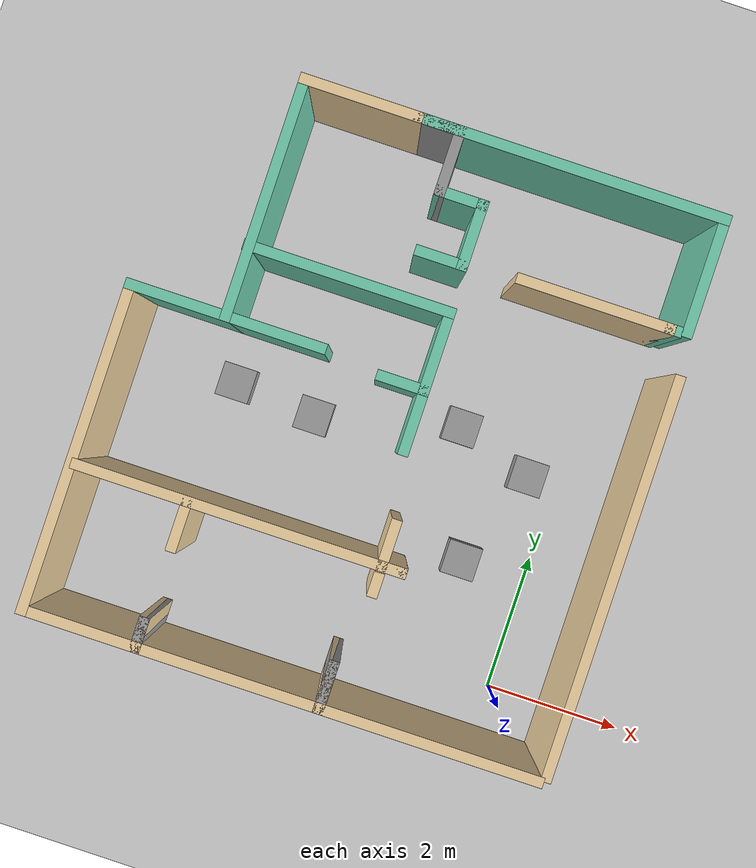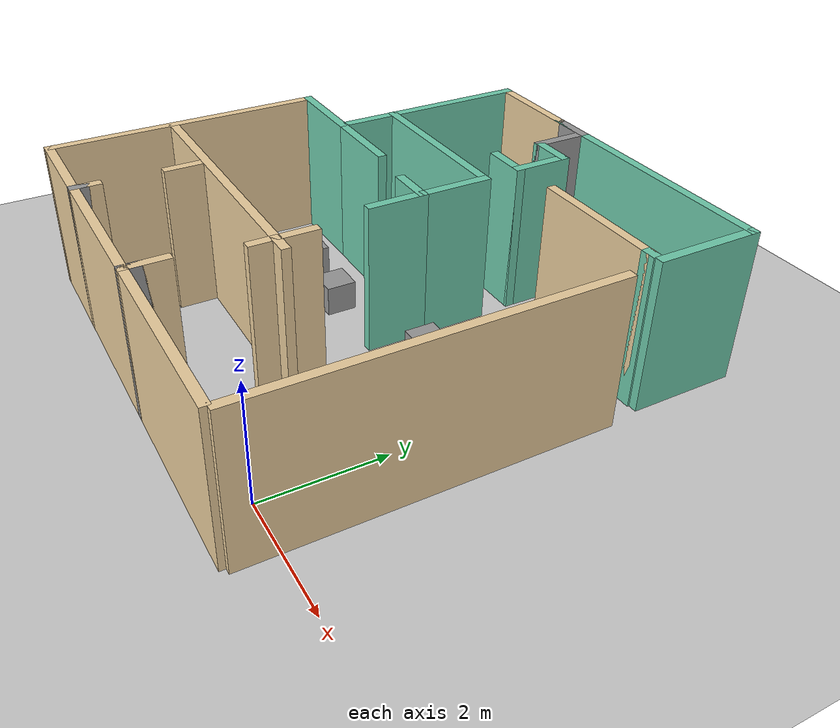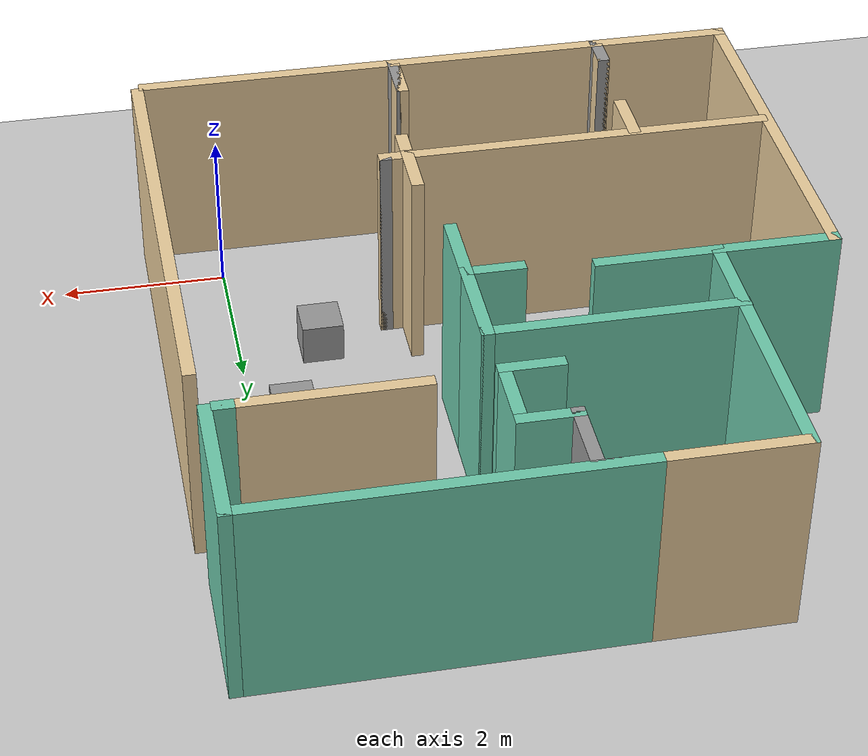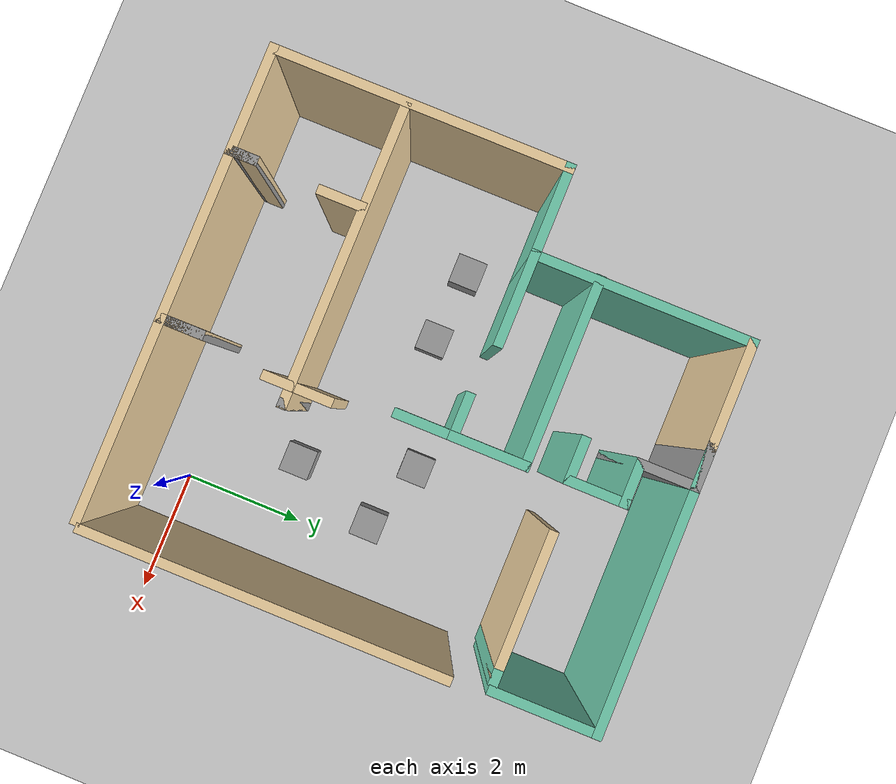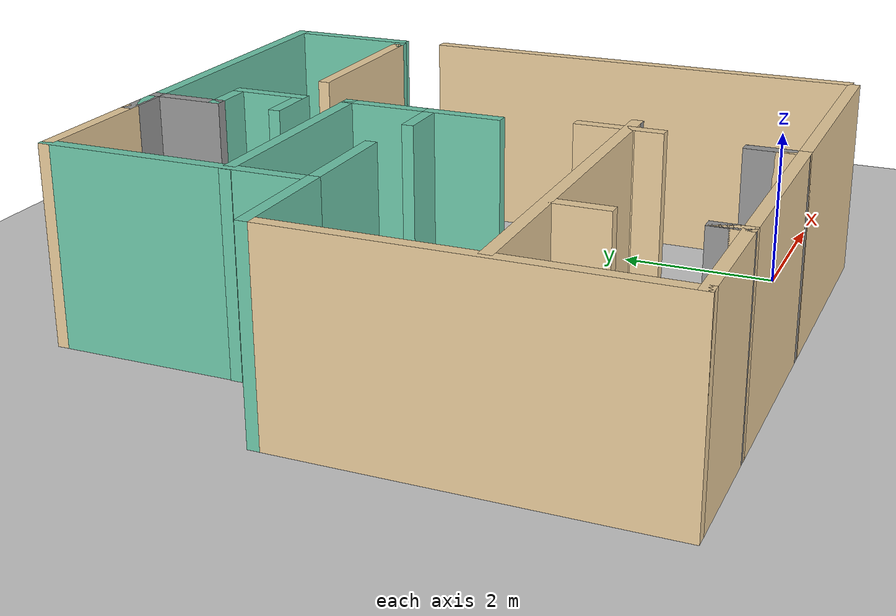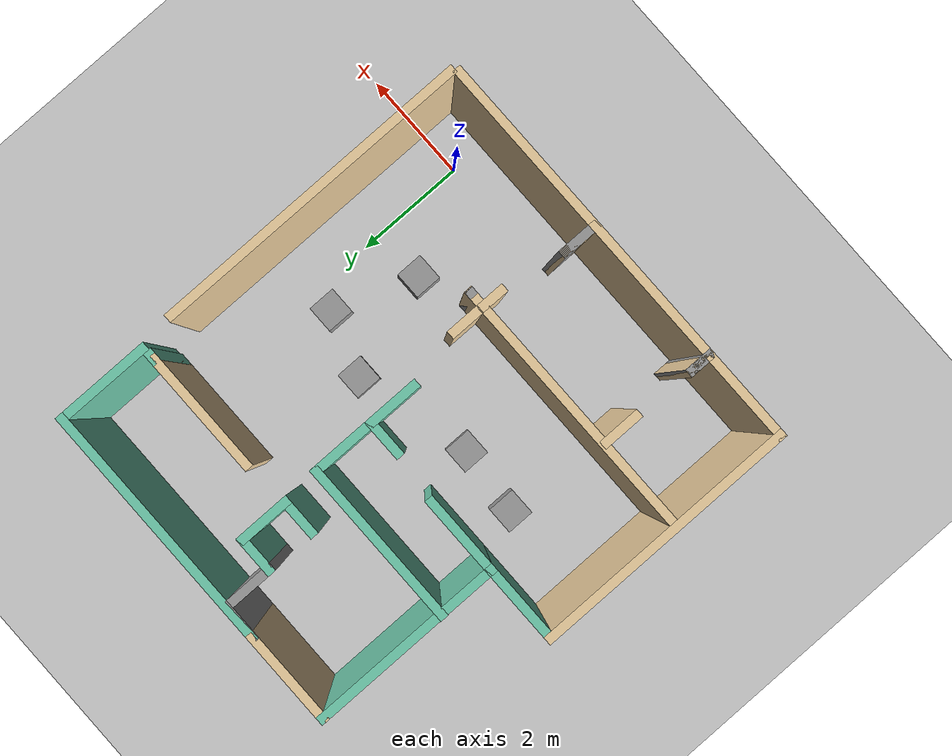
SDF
<sdf version="1.6">
 <world name="default">
  <light name="sun" type="directional">
   <pose>0 0 10 0 -0 0</pose>
   <diffuse>0.8 0.8 0.8 1</diffuse>
   <specular>0.1 0.1 0.1 1</specular>
   <attenuation>
    <range>1000</range>
    <constant>0.9</constant>
    <linear>0.01</linear>
    <quadratic>0.001</quadratic>
   </attenuation>
   <direction>-0.5 0.5 -1</direction>
  </light>
  <model name="ground_plane">
   <static>1</static>
   <link name="link">
    <collision name="collision">
     <geometry><plane><normal>0 0 1</normal><size>100 100</size></plane></geometry>
     <surface><friction><ode><mu>100</mu><mu2>50</mu2></ode></friction></surface>
    </collision>
    <visual name="visual">
     <cast_shadows>0</cast_shadows>
     <geometry><plane><normal>0 0 1</normal><size>100 100</size></plane></geometry>
     <material>
      <script><uri>file://media/materials/scripts/gazebo.material</uri><name>Gazebo/Grey</name></script>
     </material>
    </visual>
   </link>
  </model>
  <gravity>0 0 -9.8</gravity>
  <magnetic_field>6e-06 2.3e-05 -4.2e-05</magnetic_field>
  <atmosphere type="adiabatic"/>
  <physics name="default_physics" default="0" type="ode">
   <max_step_size>0.001</max_step_size>
   <real_time_factor>1</real_time_factor>
   <real_time_update_rate>1000</real_time_update_rate>
  </physics>
  <scene><ambient>0.4 0.4 0.4 1</ambient><background>0.7 0.7 0.7 1</background><shadows>1</shadows></scene>
  <spherical_coordinates>
   <surface_model>EARTH_WGS84</surface_model>
   <latitude_deg>0</latitude_deg>
   <longitude_deg>0</longitude_deg>
   <elevation>0</elevation>
   <heading_deg>0</heading_deg>
  </spherical_coordinates>
  <model name="floor_0">
   <pose>-2.83404 3.27587 0 0 -0 0</pose>
   <link name="Wall_0">
    <collision name="Wall_0_Collision">
     <geometry><box><size>1.75 0.15 2.5</size></box></geometry>
     <pose>0 0 1.25 0 -0 0</pose>
    </collision>
    <visual name="Wall_0_Visual">
     <pose>0 0 1.25 0 -0 0</pose>
     <geometry><box><size>1.75 0.15 2.5</size></box></geometry>
     <material>
      <script><uri>file://media/materials/scripts/gazebo.material</uri><name>Gazebo/Grey</name></script>
      <ambient>0.921569 0.807843 0.615686 1</ambient>
     </material>
    </visual>
    <pose>-1.54755 3.975 0 0 -0 3.14159</pose>
   </link>
   <link name="Wall_1">
    <collision name="Wall_1_Collision">
     <geometry><box><size>3.5 0.15 2.5</size></box></geometry>
     <pose>0 0 1.25 0 -0 0</pose>
    </collision>
    <visual name="Wall_1_Visual">
     <pose>0 0 1.25 0 -0 0</pose>
     <geometry><box><size>3.5 0.15 2.5</size></box></geometry>
     <material>
      <script><uri>file://media/materials/scripts/gazebo.material</uri><name>Gazebo/Grey</name></script>
      <ambient>0.435294 0.796078 0.67451 1</ambient>
     </material>
    </visual>
    <pose>-2.34755 2.3 0 0 0 -1.5708</pose>
   </link>
   <link name="Wall_10">
    <collision name="Wall_10_Collision">
     <geometry><box><size>3.25 0.15 2.5</size></box></geometry>
     <pose>0 0 1.25 0 -0 0</pose>
    </collision>
    <visual name="Wall_10_Visual">
     <pose>0 0 1.25 0 -0 0</pose>
     <geometry><box><size>3.25 0.15 2.5</size></box></geometry>
     <material>
      <script><uri>file://media/materials/scripts/gazebo.material</uri><name>Gazebo/Grey</name></script>
      <ambient>0.921569 0.807843 0.615686 1</ambient>
     </material>
    </visual>
    <pose>2.05245 -3.975 0 0 -0 0</pose>
   </link>
   <link name="Wall_13">
    <collision name="Wall_13_Collision">
     <geometry><box><size>4.5 0.15 2.5</size></box></geometry>
     <pose>0 0 1.25 0 -0 0</pose>
    </collision>
    <visual name="Wall_13_Visual">
     <pose>0 0 1.25 0 -0 0</pose>
     <geometry><box><size>4.5 0.15 2.5</size></box></geometry>
     <material>
      <script><uri>file://media/materials/scripts/gazebo.material</uri><name>Gazebo/Grey</name></script>
      <ambient>0.435294 0.796078 0.67451 1</ambient>
     </material>
    </visual>
    <pose>1.42745 3.975 0 0 -0 3.14159</pose>
   </link>
   <link name="Wall_14">
    <collision name="Wall_14_Collision">
     <geometry><box><size>0.75 0.15 2.5</size></box></geometry>
     <pose>0 0 1.25 0 -0 0</pose>
    </collision>
    <visual name="Wall_14_Visual">
     <pose>0 0 1.25 0 -0 0</pose>
     <geometry><box><size>0.75 0.15 2.5</size></box></geometry>
     <material>
      <script><uri>file://media/materials/scripts/gazebo.material</uri><name>Gazebo/Grey</name></script>
      <ambient>1 1 1 1</ambient>
     </material>
    </visual>
    <pose>-0.44755 3.975 0 0 -0 0</pose>
   </link>
   <link name="Wall_15">
    <collision name="Wall_15_Collision">
     <geometry><box><size>1 0.15 2.5</size></box></geometry>
     <pose>0 0 1.25 0 -0 0</pose>
    </collision>
    <visual name="Wall_15_Visual">
     <pose>0 0 1.25 0 -0 0</pose>
     <geometry><box><size>1 0.15 2.5</size></box></geometry>
     <material>
      <script><uri>file://media/materials/scripts/gazebo.material</uri><name>Gazebo/Grey</name></script>
      <ambient>1 1 1 1</ambient>
     </material>
    </visual>
    <pose>-0.14755 3.55 0 0 0 -1.5708</pose>
   </link>
   <link name="Wall_16">
    <collision name="Wall_16_Collision">
     <geometry><box><size>0.75 0.15 2.5</size></box></geometry>
     <pose>0 0 1.25 0 -0 0</pose>
    </collision>
    <visual name="Wall_16_Visual">
     <pose>0 0 1.25 0 -0 0</pose>
     <geometry><box><size>0.75 0.15 2.5</size></box></geometry>
     <material>
      <script><uri>file://media/materials/scripts/gazebo.material</uri><name>Gazebo/Grey</name></script>
      <ambient>0.435294 0.796078 0.67451 1</ambient>
     </material>
    </visual>
    <pose>0.15245 3.125 0 0 -0 0</pose>
   </link>
   <link name="Wall_17">
    <collision name="Wall_17_Collision">
     <geometry><box><size>1 0.15 2.5</size></box></geometry>
     <pose>0 0 1.25 0 -0 0</pose>
    </collision>
    <visual name="Wall_17_Visual">
     <pose>0 0 1.25 0 -0 0</pose>
     <geometry><box><size>1 0.15 2.5</size></box></geometry>
     <material>
      <script><uri>file://media/materials/scripts/gazebo.material</uri><name>Gazebo/Grey</name></script>
      <ambient>0.435294 0.796078 0.67451 1</ambient>
     </material>
    </visual>
    <pose>0.45245 2.7 0 0 0 -1.5708</pose>
   </link>
   <link name="Wall_18">
    <collision name="Wall_18_Collision">
     <geometry><box><size>0.75 0.15 2.5</size></box></geometry>
     <pose>0 0 1.25 0 -0 0</pose>
    </collision>
    <visual name="Wall_18_Visual">
     <pose>0 0 1.25 0 -0 0</pose>
     <geometry><box><size>0.75 0.15 2.5</size></box></geometry>
     <material>
      <script><uri>file://media/materials/scripts/gazebo.material</uri><name>Gazebo/Grey</name></script>
      <ambient>0.435294 0.796078 0.67451 1</ambient>
     </material>
    </visual>
    <pose>0.15245 2.275 0 0 -0 3.14159</pose>
   </link>
   <link name="Wall_2">
    <collision name="Wall_2_Collision">
     <geometry><box><size>1.5 0.15 2.5</size></box></geometry>
     <pose>0 0 1.25 0 -0 0</pose>
    </collision>
    <visual name="Wall_2_Visual">
     <pose>0 0 1.25 0 -0 0</pose>
     <geometry><box><size>1.5 0.15 2.5</size></box></geometry>
     <material>
      <script><uri>file://media/materials/scripts/gazebo.material</uri><name>Gazebo/Grey</name></script>
      <ambient>0.435294 0.796078 0.67451 1</ambient>
     </material>
    </visual>
    <pose>-3.02255 0.625 0 0 -0 3.14159</pose>
   </link>
   <link name="Wall_20">
    <collision name="Wall_20_Collision">
     <geometry><box><size>3 0.15 2.5</size></box></geometry>
     <pose>0 0 1.25 0 -0 0</pose>
    </collision>
    <visual name="Wall_20_Visual">
     <pose>0 0 1.25 0 -0 0</pose>
     <geometry><box><size>3 0.15 2.5</size></box></geometry>
     <material>
      <script><uri>file://media/materials/scripts/gazebo.material</uri><name>Gazebo/Grey</name></script>
      <ambient>0.435294 0.796078 0.67451 1</ambient>
     </material>
    </visual>
    <pose>-0.931635 1.62171 0 0 -0 0</pose>
   </link>
   <link name="Wall_21">
    <collision name="Wall_21_Collision">
     <geometry><box><size>1.25 0.15 2.5</size></box></geometry>
     <pose>0 0 1.25 0 -0 0</pose>
    </collision>
    <visual name="Wall_21_Visual">
     <pose>0 0 1.25 0 -0 0</pose>
     <geometry><box><size>1.25 0.15 2.5</size></box></geometry>
     <material>
      <script><uri>file://media/materials/scripts/gazebo.material</uri><name>Gazebo/Grey</name></script>
      <ambient>0.435294 0.796078 0.67451 1</ambient>
     </material>
    </visual>
    <pose>0.493365 1.07171 0 0 0 -1.5708</pose>
   </link>
   <link name="Wall_22">
    <collision name="Wall_22_Collision">
     <geometry><box><size>0.75 0.15 2.5</size></box></geometry>
     <pose>0 0 1.25 0 -0 0</pose>
    </collision>
    <visual name="Wall_22_Visual">
     <pose>0 0 1.25 0 -0 0</pose>
     <geometry><box><size>0.75 0.15 2.5</size></box></geometry>
     <material>
      <script><uri>file://media/materials/scripts/gazebo.material</uri><name>Gazebo/Grey</name></script>
      <ambient>0.435294 0.796078 0.67451 1</ambient>
     </material>
    </visual>
    <pose>0.193365 0.521712 0 0 -0 3.14159</pose>
   </link>
   <link name="Wall_24">
    <collision name="Wall_24_Collision">
     <geometry><box><size>1.5 0.15 2.5</size></box></geometry>
     <pose>0 0 1.25 0 -0 0</pose>
    </collision>
    <visual name="Wall_24_Visual">
     <pose>0 0 1.25 0 -0 0</pose>
     <geometry><box><size>1.5 0.15 2.5</size></box></geometry>
     <material>
      <script><uri>file://media/materials/scripts/gazebo.material</uri><name>Gazebo/Grey</name></script>
      <ambient>0.435294 0.796078 0.67451 1</ambient>
     </material>
    </visual>
    <pose>-1.67255 0.625 0 0 -0 0</pose>
   </link>
   <link name="Wall_26">
    <collision name="Wall_26_Collision">
     <geometry><box><size>1 0.15 2.5</size></box></geometry>
     <pose>0 0 1.25 0 -0 0</pose>
    </collision>
    <visual name="Wall_26_Visual">
     <pose>0 0 1.25 0 -0 0</pose>
     <geometry><box><size>1 0.15 2.5</size></box></geometry>
     <material>
      <script><uri>file://media/materials/scripts/gazebo.material</uri><name>Gazebo/Grey</name></script>
      <ambient>0.435294 0.796078 0.67451 1</ambient>
     </material>
    </visual>
    <pose>0.493365 0.096712 0 0 0 -1.5708</pose>
   </link>
   <link name="Wall_28">
    <collision name="Wall_28_Collision">
     <geometry><box><size>4.75 0.15 2.5</size></box></geometry>
     <pose>0 0 1.25 0 -0 0</pose>
    </collision>
    <visual name="Wall_28_Visual">
     <pose>0 0 1.25 0 -0 0</pose>
     <geometry><box><size>4.75 0.15 2.5</size></box></geometry>
     <material>
      <script><uri>file://media/materials/scripts/gazebo.material</uri><name>Gazebo/Grey</name></script>
      <ambient>0.921569 0.807843 0.615686 1</ambient>
     </material>
    </visual>
    <pose>-1.32379 -1.89816 0 0 -0 0</pose>
   </link>
   <link name="Wall_29">
    <collision name="Wall_29_Collision">
     <geometry><box><size>0.15 0.15 2.5</size></box></geometry>
     <pose>0 0 1.25 0 -0 0</pose>
    </collision>
    <visual name="Wall_29_Visual">
     <pose>0 0 1.25 0 -0 0</pose>
     <geometry><box><size>0.15 0.15 2.5</size></box></geometry>
     <material>
      <script><uri>file://media/materials/scripts/gazebo.material</uri><name>Gazebo/Grey</name></script>
      <ambient>1 1 1 1</ambient>
     </material>
    </visual>
    <pose>0.97621 -1.89816 0 0 -0 0</pose>
   </link>
   <link name="Wall_3">
    <collision name="Wall_3_Collision">
     <geometry><box><size>4.75 0.15 2.5</size></box></geometry>
     <pose>0 0 1.25 0 -0 0</pose>
    </collision>
    <visual name="Wall_3_Visual">
     <pose>0 0 1.25 0 -0 0</pose>
     <geometry><box><size>4.75 0.15 2.5</size></box></geometry>
     <material>
      <script><uri>file://media/materials/scripts/gazebo.material</uri><name>Gazebo/Grey</name></script>
      <ambient>0.921569 0.807843 0.615686 1</ambient>
     </material>
    </visual>
    <pose>-3.69755 -1.675 0 0 0 -1.5708</pose>
   </link>
   <link name="Wall_31">
    <collision name="Wall_31_Collision">
     <geometry><box><size>0.75 0.15 2.5</size></box></geometry>
     <pose>0 0 1.25 0 -0 0</pose>
    </collision>
    <visual name="Wall_31_Visual">
     <pose>0 0 1.25 0 -0 0</pose>
     <geometry><box><size>0.75 0.15 2.5</size></box></geometry>
     <material>
      <script><uri>file://media/materials/scripts/gazebo.material</uri><name>Gazebo/Grey</name></script>
      <ambient>0.921569 0.807843 0.615686 1</ambient>
     </material>
    </visual>
    <pose>0.700628 -1.61487 0 0 0 -1.5708</pose>
   </link>
   <link name="Wall_32">
    <collision name="Wall_32_Collision">
     <geometry><box><size>0.5 0.15 2.5</size></box></geometry>
     <pose>0 0 1.25 0 -0 0</pose>
    </collision>
    <visual name="Wall_32_Visual">
     <pose>0 0 1.25 0 -0 0</pose>
     <geometry><box><size>0.5 0.15 2.5</size></box></geometry>
     <material>
      <script><uri>file://media/materials/scripts/gazebo.material</uri><name>Gazebo/Grey</name></script>
      <ambient>0.921569 0.807843 0.615686 1</ambient>
     </material>
    </visual>
    <pose>0.700628 -2.08987 0 0 0 -1.5708</pose>
   </link>
   <link name="Wall_34">
    <collision name="Wall_34_Collision">
     <geometry><box><size>2.25 0.15 2.5</size></box></geometry>
     <pose>0 0 1.25 0 -0 0</pose>
    </collision>
    <visual name="Wall_34_Visual">
     <pose>0 0 1.25 0 -0 0</pose>
     <geometry><box><size>2.25 0.15 2.5</size></box></geometry>
     <material>
      <script><uri>file://media/materials/scripts/gazebo.material</uri><name>Gazebo/Grey</name></script>
      <ambient>0.921569 0.807843 0.615686 1</ambient>
     </material>
    </visual>
    <pose>2.31381 2.3458 0 0 -0 0</pose>
   </link>
   <link name="Wall_35">
    <collision name="Wall_35_Collision">
     <geometry><box><size>0.25 0.15 2.5</size></box></geometry>
     <pose>0 0 1.25 0 -0 0</pose>
    </collision>
    <visual name="Wall_35_Visual">
     <pose>0 0 1.25 0 -0 0</pose>
     <geometry><box><size>0.25 0.15 2.5</size></box></geometry>
     <material>
      <script><uri>file://media/materials/scripts/gazebo.material</uri><name>Gazebo/Grey</name></script>
      <ambient>0.435294 0.796078 0.67451 1</ambient>
     </material>
    </visual>
    <pose>3.41381 2.3458 0 0 -0 0</pose>
   </link>
   <link name="Wall_37">
    <collision name="Wall_37_Collision">
     <geometry><box><size>1.75 0.15 2.5</size></box></geometry>
     <pose>0 0 1.25 0 -0 0</pose>
    </collision>
    <visual name="Wall_37_Visual">
     <pose>0 0 1.25 0 -0 0</pose>
     <geometry><box><size>1.75 0.15 2.5</size></box></geometry>
     <material>
      <script><uri>file://media/materials/scripts/gazebo.material</uri><name>Gazebo/Grey</name></script>
      <ambient>0.435294 0.796078 0.67451 1</ambient>
     </material>
    </visual>
    <pose>3.60245 3.175 0 0 0 -1.5708</pose>
   </link>
   <link name="Wall_39">
    <collision name="Wall_39_Collision">
     <geometry><box><size>5.75 0.15 2.5</size></box></geometry>
     <pose>0 0 1.25 0 -0 0</pose>
    </collision>
    <visual name="Wall_39_Visual">
     <pose>0 0 1.25 0 -0 0</pose>
     <geometry><box><size>5.75 0.15 2.5</size></box></geometry>
     <material>
      <script><uri>file://media/materials/scripts/gazebo.material</uri><name>Gazebo/Grey</name></script>
      <ambient>0.921569 0.807843 0.615686 1</ambient>
     </material>
    </visual>
    <pose>3.69755 -1.07772 0 0 0 -1.5708</pose>
   </link>
   <link name="Wall_4">
    <collision name="Wall_4_Collision">
     <geometry><box><size>1.75 0.15 2.5</size></box></geometry>
     <pose>0 0 1.25 0 -0 0</pose>
    </collision>
    <visual name="Wall_4_Visual">
     <pose>0 0 1.25 0 -0 0</pose>
     <geometry><box><size>1.75 0.15 2.5</size></box></geometry>
     <material>
      <script><uri>file://media/materials/scripts/gazebo.material</uri><name>Gazebo/Grey</name></script>
      <ambient>0.921569 0.807843 0.615686 1</ambient>
     </material>
    </visual>
    <pose>-2.89755 -3.975 0 0 -0 0</pose>
   </link>
   <link name="Wall_41">
    <collision name="Wall_41_Collision">
     <geometry><box><size>0.75 0.15 2.5</size></box></geometry>
     <pose>0 0 1.25 0 -0 0</pose>
    </collision>
    <visual name="Wall_41_Visual">
     <pose>0 0 1.25 0 -0 0</pose>
     <geometry><box><size>0.75 0.15 2.5</size></box></geometry>
     <material>
      <script><uri>file://media/materials/scripts/gazebo.material</uri><name>Gazebo/Grey</name></script>
      <ambient>0.921569 0.807843 0.615686 1</ambient>
     </material>
    </visual>
    <pose>-2.05493 -2.23839 0 0 0 -1.5708</pose>
   </link>
   <link name="Wall_5">
    <collision name="Wall_5_Collision">
     <geometry><box><size>0.5 0.15 2.5</size></box></geometry>
     <pose>0 0 1.25 0 -0 0</pose>
    </collision>
    <visual name="Wall_5_Visual">
     <pose>0 0 1.25 0 -0 0</pose>
     <geometry><box><size>0.5 0.15 2.5</size></box></geometry>
     <material>
      <script><uri>file://media/materials/scripts/gazebo.material</uri><name>Gazebo/Grey</name></script>
      <ambient>1 1 1 1</ambient>
     </material>
    </visual>
    <pose>-2.09755 -3.8 0 0 -0 1.5708</pose>
   </link>
   <link name="Wall_6">
    <collision name="Wall_6_Collision">
     <geometry><box><size>0.5 0.15 2.5</size></box></geometry>
     <pose>0 0 1.25 0 -0 0</pose>
    </collision>
    <visual name="Wall_6_Visual">
     <pose>0 0 1.25 0 -0 0</pose>
     <geometry><box><size>0.5 0.15 2.5</size></box></geometry>
     <material>
      <script><uri>file://media/materials/scripts/gazebo.material</uri><name>Gazebo/Grey</name></script>
      <ambient>0.921569 0.807843 0.615686 1</ambient>
     </material>
    </visual>
    <pose>-2.09755 -3.8 0 0 0 -1.5708</pose>
   </link>
   <link name="Wall_7">
    <collision name="Wall_7_Collision">
     <geometry><box><size>2.75 0.15 2.5</size></box></geometry>
     <pose>0 0 1.25 0 -0 0</pose>
    </collision>
    <visual name="Wall_7_Visual">
     <pose>0 0 1.25 0 -0 0</pose>
     <geometry><box><size>2.75 0.15 2.5</size></box></geometry>
     <material>
      <script><uri>file://media/materials/scripts/gazebo.material</uri><name>Gazebo/Grey</name></script>
      <ambient>0.921569 0.807843 0.615686 1</ambient>
     </material>
    </visual>
    <pose>-0.79755 -3.975 0 0 -0 0</pose>
   </link>
   <link name="Wall_8">
    <collision name="Wall_8_Collision">
     <geometry><box><size>0.75 0.15 2.5</size></box></geometry>
     <pose>0 0 1.25 0 -0 0</pose>
    </collision>
    <visual name="Wall_8_Visual">
     <pose>0 0 1.25 0 -0 0</pose>
     <geometry><box><size>0.75 0.15 2.5</size></box></geometry>
     <material>
      <script><uri>file://media/materials/scripts/gazebo.material</uri><name>Gazebo/Grey</name></script>
      <ambient>1 1 1 1</ambient>
     </material>
    </visual>
    <pose>0.50245 -3.675 0 0 -0 1.5708</pose>
   </link>
   <link name="Wall_9">
    <collision name="Wall_9_Collision">
     <geometry><box><size>0.75 0.15 2.5</size></box></geometry>
     <pose>0 0 1.25 0 -0 0</pose>
    </collision>
    <visual name="Wall_9_Visual">
     <pose>0 0 1.25 0 -0 0</pose>
     <geometry><box><size>0.75 0.15 2.5</size></box></geometry>
     <material>
      <script><uri>file://media/materials/scripts/gazebo.material</uri><name>Gazebo/Grey</name></script>
      <ambient>0.921569 0.807843 0.615686 1</ambient>
     </material>
    </visual>
    <pose>0.50245 -3.675 0 0 0 -1.5708</pose>
   </link>
   <static>1</static>
  </model>
  <model name="unit_box_0_1">
   <link name="link">
    <inertial>
     <mass>1</mass>
     <inertia>
      <ixx>0.166667</ixx>
      <ixy>0</ixy>
      <ixz>0</ixz>
      <iyy>0.166667</iyy>
      <iyz>0</iyz>
      <izz>0.166667</izz>
     </inertia>
    </inertial>
    <visual name="visual">
     <geometry><box><size>0.5 0.5 0.5</size></box></geometry>
     <material>
      <script><name>Gazebo/Grey</name><uri>file://media/materials/scripts/gazebo.material</uri></script>
      <ambient>0.3 0.3 0.3 1</ambient>
      <diffuse>0.7 0.7 0.7 1</diffuse>
      <specular>0.01 0.01 0.01 1</specular>
      <emissive>0 0 0 1</emissive>
      <shader type="vertex"><normal_map>__default__</normal_map></shader>
     </material>
    </visual>
    <collision name="collision">
     <geometry><box><size>0.5 0.5 0.5</size></box></geometry>
     <surface>
      <friction>
       <ode><mu>1</mu><mu2>1</mu2><fdir1>0 0 0</fdir1><slip1>0</slip1><slip2>0</slip2></ode>
       <torsional>
        <coefficient>1</coefficient>
        <patch_radius>0</patch_radius>
        <surface_radius>0</surface_radius>
        <use_patch_radius>1</use_patch_radius>
        <ode><slip>0</slip></ode>
       </torsional>
      </friction>
      <bounce><restitution_coefficient>0</restitution_coefficient><threshold>1e+06</threshold></bounce>
      <contact>
       <collide_without_contact>0</collide_without_contact>
       <collide_without_contact_bitmask>1</collide_without_contact_bitmask>
       <collide_bitmask>1</collide_bitmask>
       <ode>
        <soft_cfm>0</soft_cfm>
        <soft_erp>0.2</soft_erp>
        <kp>1e+13</kp>
        <kd>1</kd>
        <max_vel>0.01</max_vel>
        <min_depth>0</min_depth>
       </ode>
       <bullet>
        <split_impulse>1</split_impulse>
        <split_impulse_penetration_threshold>-0.01</split_impulse_penetration_threshold>
        <soft_cfm>0</soft_cfm>
        <soft_erp>0.2</soft_erp>
        <kp>1e+13</kp>
        <kd>1</kd>
       </bullet>
      </contact>
     </surface>
    </collision>
   </link>
   <static>0</static>
   <pose>-0.994207 1.67408 0.25 0 -0 0</pose>
  </model>
  <model name="unit_box_0_2">
   <link name="link">
    <inertial>
     <mass>1</mass>
     <inertia>
      <ixx>0.166667</ixx>
      <ixy>0</ixy>
      <ixz>0</ixz>
      <iyy>0.166667</iyy>
      <iyz>0</iyz>
      <izz>0.166667</izz>
     </inertia>
    </inertial>
    <visual name="visual">
     <geometry><box><size>0.5 0.5 0.5</size></box></geometry>
     <material>
      <script><name>Gazebo/Grey</name><uri>file://media/materials/scripts/gazebo.material</uri></script>
      <ambient>0.3 0.3 0.3 1</ambient>
      <diffuse>0.7 0.7 0.7 1</diffuse>
      <specular>0.01 0.01 0.01 1</specular>
      <emissive>0 0 0 1</emissive>
      <shader type="vertex"><normal_map>__default__</normal_map></shader>
     </material>
    </visual>
    <collision name="collision">
     <geometry><box><size>0.5 0.5 0.5</size></box></geometry>
     <surface>
      <friction>
       <ode><mu>1</mu><mu2>1</mu2><fdir1>0 0 0</fdir1><slip1>0</slip1><slip2>0</slip2></ode>
       <torsional>
        <coefficient>1</coefficient>
        <patch_radius>0</patch_radius>
        <surface_radius>0</surface_radius>
        <use_patch_radius>1</use_patch_radius>
        <ode><slip>0</slip></ode>
       </torsional>
      </friction>
      <bounce><restitution_coefficient>0</restitution_coefficient><threshold>1e+06</threshold></bounce>
      <contact>
       <collide_without_contact>0</collide_without_contact>
       <collide_without_contact_bitmask>1</collide_without_contact_bitmask>
       <collide_bitmask>1</collide_bitmask>
       <ode>
        <soft_cfm>0</soft_cfm>
        <soft_erp>0.2</soft_erp>
        <kp>1e+13</kp>
        <kd>1</kd>
        <max_vel>0.01</max_vel>
        <min_depth>0</min_depth>
       </ode>
       <bullet>
        <split_impulse>1</split_impulse>
        <split_impulse_penetration_threshold>-0.01</split_impulse_penetration_threshold>
        <soft_cfm>0</soft_cfm>
        <soft_erp>0.2</soft_erp>
        <kp>1e+13</kp>
        <kd>1</kd>
       </bullet>
      </contact>
     </surface>
    </collision>
   </link>
   <static>0</static>
   <pose>-1.60181 3.5265 0.25 0 -0 0</pose>
  </model>
  <model name="unit_box_0_3">
   <link name="link">
    <inertial>
     <mass>1</mass>
     <inertia>
      <ixx>0.166667</ixx>
      <ixy>0</ixy>
      <ixz>0</ixz>
      <iyy>0.166667</iyy>
      <iyz>0</iyz>
      <izz>0.166667</izz>
     </inertia>
    </inertial>
    <visual name="visual">
     <geometry><box><size>0.5 0.5 0.5</size></box></geometry>
     <material>
      <script><name>Gazebo/Grey</name><uri>file://media/materials/scripts/gazebo.material</uri></script>
      <ambient>0.3 0.3 0.3 1</ambient>
      <diffuse>0.7 0.7 0.7 1</diffuse>
      <specular>0.01 0.01 0.01 1</specular>
      <emissive>0 0 0 1</emissive>
      <shader type="vertex"><normal_map>__default__</normal_map></shader>
     </material>
    </visual>
    <collision name="collision">
     <geometry><box><size>0.5 0.5 0.5</size></box></geometry>
     <surface>
      <friction>
       <ode><mu>1</mu><mu2>1</mu2><fdir1>0 0 0</fdir1><slip1>0</slip1><slip2>0</slip2></ode>
       <torsional>
        <coefficient>1</coefficient>
        <patch_radius>0</patch_radius>
        <surface_radius>0</surface_radius>
        <use_patch_radius>1</use_patch_radius>
        <ode><slip>0</slip></ode>
       </torsional>
      </friction>
      <bounce><restitution_coefficient>0</restitution_coefficient><threshold>1e+06</threshold></bounce>
      <contact>
       <collide_without_contact>0</collide_without_contact>
       <collide_without_contact_bitmask>1</collide_without_contact_bitmask>
       <collide_bitmask>1</collide_bitmask>
       <ode>
        <soft_cfm>0</soft_cfm>
        <soft_erp>0.2</soft_erp>
        <kp>1e+13</kp>
        <kd>1</kd>
        <max_vel>0.01</max_vel>
        <min_depth>0</min_depth>
       </ode>
       <bullet>
        <split_impulse>1</split_impulse>
        <split_impulse_penetration_threshold>-0.01</split_impulse_penetration_threshold>
        <soft_cfm>0</soft_cfm>
        <soft_erp>0.2</soft_erp>
        <kp>1e+13</kp>
        <kd>1</kd>
       </bullet>
      </contact>
     </surface>
    </collision>
   </link>
   <static>0</static>
   <pose>-0.454388 3.14346 0.25 0 -0 0</pose>
  </model>
  <model name="unit_box_0_4">
   <link name="link">
    <inertial>
     <mass>1</mass>
     <inertia>
      <ixx>0.166667</ixx>
      <ixy>0</ixy>
      <ixz>0</ixz>
      <iyy>0.166667</iyy>
      <iyz>0</iyz>
      <izz>0.166667</izz>
     </inertia>
    </inertial>
    <visual name="visual">
     <geometry><box><size>0.5 0.5 0.5</size></box></geometry>
     <material>
      <script><name>Gazebo/Grey</name><uri>file://media/materials/scripts/gazebo.material</uri></script>
      <ambient>0.3 0.3 0.3 1</ambient>
      <diffuse>0.7 0.7 0.7 1</diffuse>
      <specular>0.01 0.01 0.01 1</specular>
      <emissive>0 0 0 1</emissive>
      <shader type="vertex"><normal_map>__default__</normal_map></shader>
     </material>
    </visual>
    <collision name="collision">
     <geometry><box><size>0.5 0.5 0.5</size></box></geometry>
     <surface>
      <friction>
       <ode><mu>1</mu><mu2>1</mu2><fdir1>0 0 0</fdir1><slip1>0</slip1><slip2>0</slip2></ode>
       <torsional>
        <coefficient>1</coefficient>
        <patch_radius>0</patch_radius>
        <surface_radius>0</surface_radius>
        <use_patch_radius>1</use_patch_radius>
        <ode><slip>0</slip></ode>
       </torsional>
      </friction>
      <bounce><restitution_coefficient>0</restitution_coefficient><threshold>1e+06</threshold></bounce>
      <contact>
       <collide_without_contact>0</collide_without_contact>
       <collide_without_contact_bitmask>1</collide_without_contact_bitmask>
       <collide_bitmask>1</collide_bitmask>
       <ode>
        <soft_cfm>0</soft_cfm>
        <soft_erp>0.2</soft_erp>
        <kp>1e+13</kp>
        <kd>1</kd>
        <max_vel>0.01</max_vel>
        <min_depth>0</min_depth>
       </ode>
       <bullet>
        <split_impulse>1</split_impulse>
        <split_impulse_penetration_threshold>-0.01</split_impulse_penetration_threshold>
        <soft_cfm>0</soft_cfm>
        <soft_erp>0.2</soft_erp>
        <kp>1e+13</kp>
        <kd>1</kd>
       </bullet>
      </contact>
     </surface>
    </collision>
   </link>
   <static>0</static>
   <pose>-3.71158 2.99811 0.25 0 -0 0</pose>
  </model>
  <model name="unit_box_0_5">
   <link name="link">
    <inertial>
     <mass>1</mass>
     <inertia>
      <ixx>0.166667</ixx>
      <ixy>0</ixy>
      <ixz>0</ixz>
      <iyy>0.166667</iyy>
      <iyz>0</iyz>
      <izz>0.166667</izz>
     </inertia>
    </inertial>
    <visual name="visual">
     <geometry><box><size>0.5 0.5 0.5</size></box></geometry>
     <material>
      <script><name>Gazebo/Grey</name><uri>file://media/materials/scripts/gazebo.material</uri></script>
      <ambient>0.3 0.3 0.3 1</ambient>
      <diffuse>0.7 0.7 0.7 1</diffuse>
      <specular>0.01 0.01 0.01 1</specular>
      <emissive>0 0 0 1</emissive>
      <shader type="vertex"><normal_map>__default__</normal_map></shader>
     </material>
    </visual>
    <collision name="collision">
     <geometry><box><size>0.5 0.5 0.5</size></box></geometry>
     <surface>
      <friction>
       <ode><mu>1</mu><mu2>1</mu2><fdir1>0 0 0</fdir1><slip1>0</slip1><slip2>0</slip2></ode>
       <torsional>
        <coefficient>1</coefficient>
        <patch_radius>0</patch_radius>
        <surface_radius>0</surface_radius>
        <use_patch_radius>1</use_patch_radius>
        <ode><slip>0</slip></ode>
       </torsional>
      </friction>
      <bounce><restitution_coefficient>0</restitution_coefficient><threshold>1e+06</threshold></bounce>
      <contact>
       <collide_without_contact>0</collide_without_contact>
       <collide_without_contact_bitmask>1</collide_without_contact_bitmask>
       <collide_bitmask>1</collide_bitmask>
       <ode>
        <soft_cfm>0</soft_cfm>
        <soft_erp>0.2</soft_erp>
        <kp>1e+13</kp>
        <kd>1</kd>
        <max_vel>0.01</max_vel>
        <min_depth>0</min_depth>
       </ode>
       <bullet>
        <split_impulse>1</split_impulse>
        <split_impulse_penetration_threshold>-0.01</split_impulse_penetration_threshold>
        <soft_cfm>0</soft_cfm>
        <soft_erp>0.2</soft_erp>
        <kp>1e+13</kp>
        <kd>1</kd>
       </bullet>
      </contact>
     </surface>
    </collision>
   </link>
   <static>0</static>
   <pose>-4.94239 3.10205 0.25 0 -0 0</pose>
  </model>
 </world>
</sdf>
